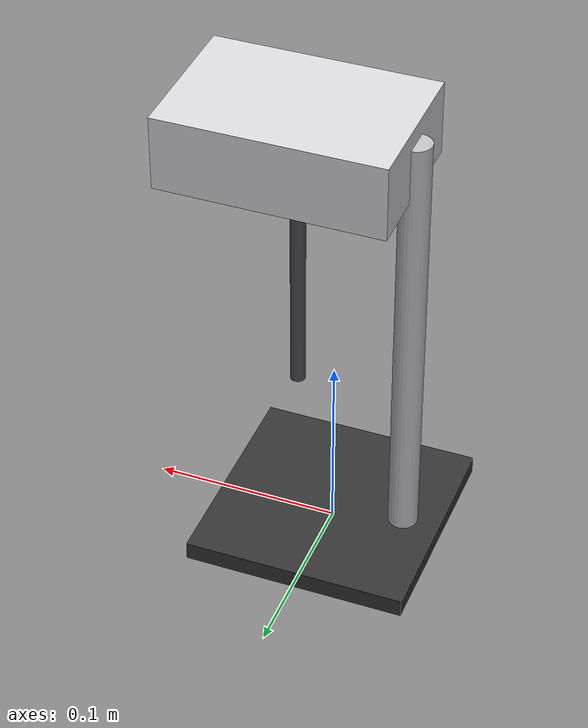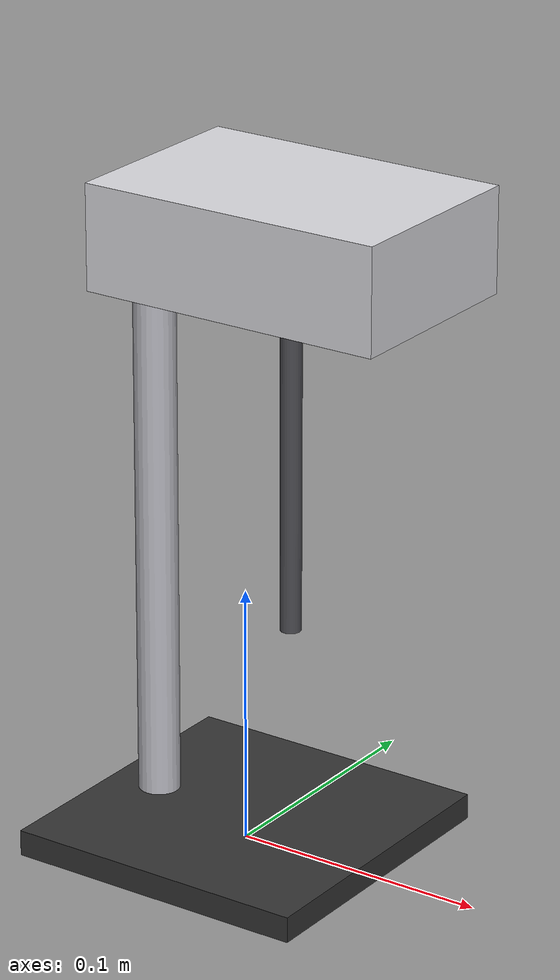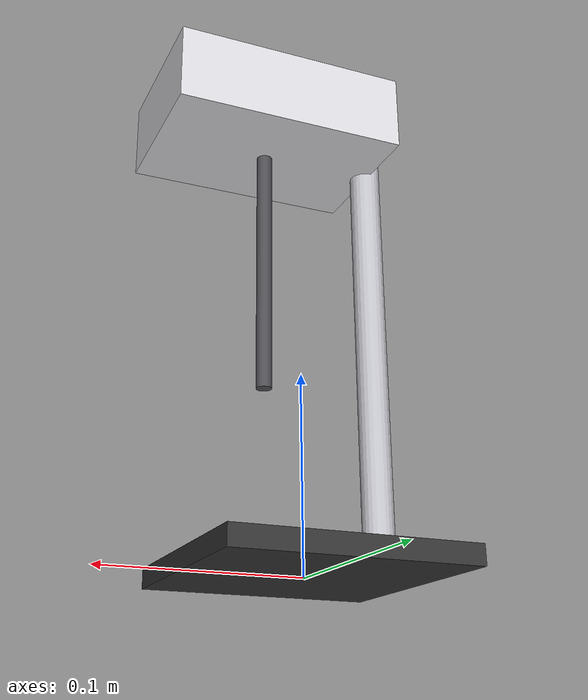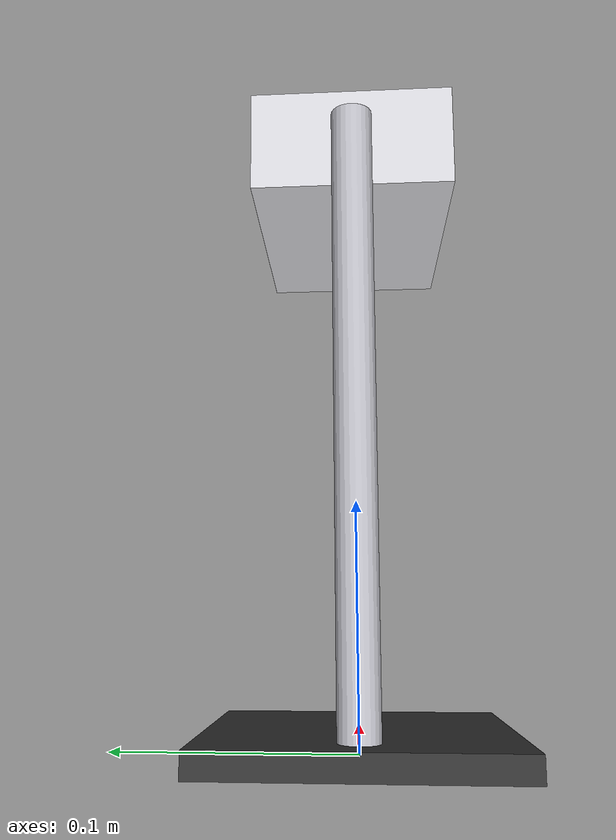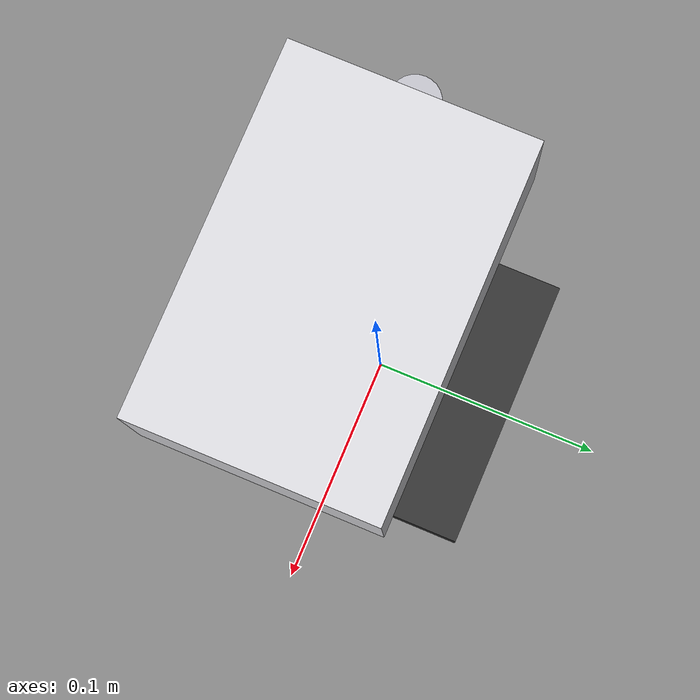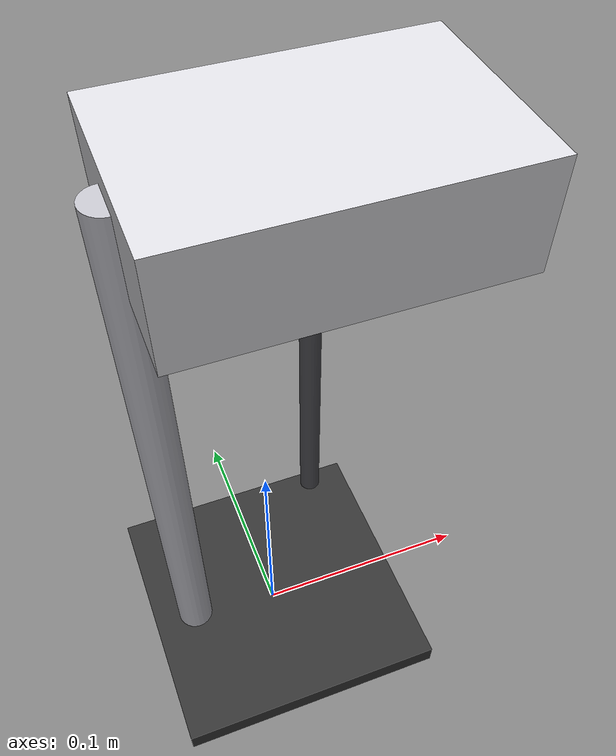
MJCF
<?xml version="1.0" encoding="utf-8"?>
<mujoco model="viscometer">
  <compiler angle="radian" autolimits="true"/>
  <default>
    <default class="body"><geom contype="1" conaffinity="1"/></default>
  </default>
  <worldbody>
    <body name="base">
      <geom type="box" size="0.06 0.06 0.005" pos="0 0 0.005" rgba="0.2 0.2 0.2 1" class="body"/>
      <geom type="cylinder" size="0.008 0.12" pos="-0.04 0 0.13" rgba="0.75 0.75 0.78 1" class="body"/>
      <geom type="box" size="0.06 0.04 0.02" pos="0.02 0 0.24" rgba="0.85 0.85 0.87 1" class="body"/>
      <body name="spindle" pos="0.02 0 0.16">
        <joint name="spindle_joint" type="hinge" axis="0 0 1" range="-3.14159 3.14159" damping="0.15" frictionloss="0.05"/>
  <geom type="cylinder" size="0.004 0.07" pos="0 0 0" rgba="0.3 0.3 0.32 1" class="body"/>
      </body>
    </body>
  </worldbody>
</mujoco>
